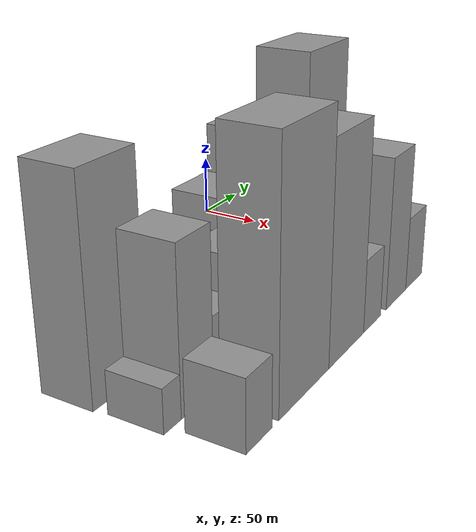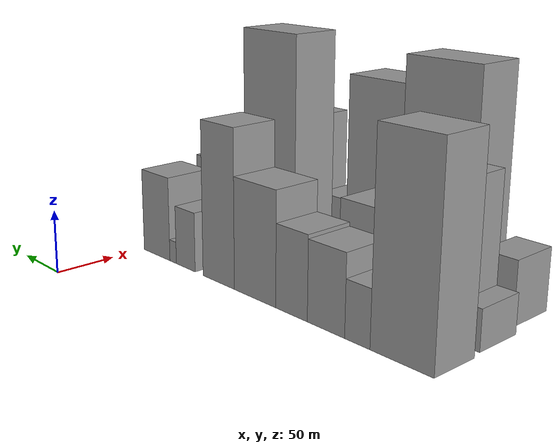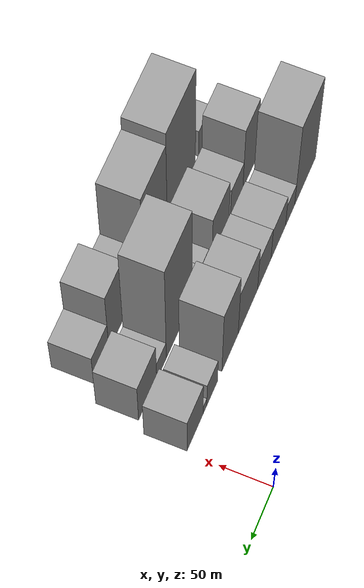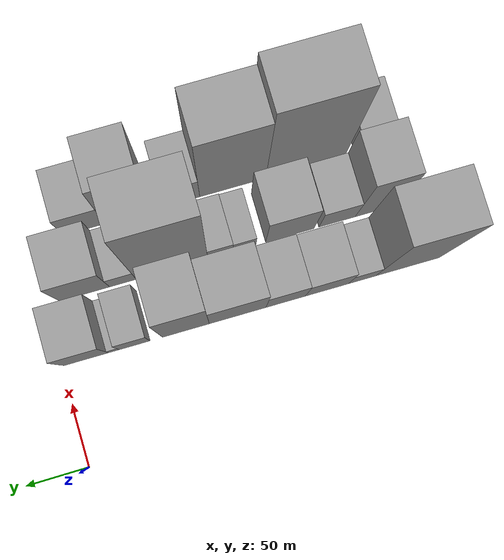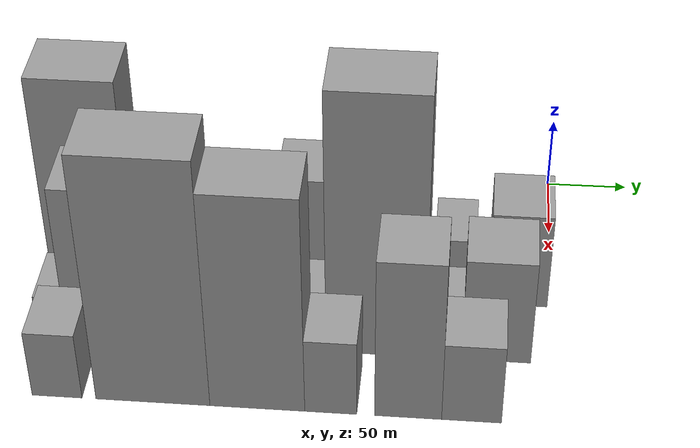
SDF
<sdf version="1.6">
 <world name="default">
  <model name="building_10">
   <static>1</static>
   <pose>100.0000 -278.1690 0 0.000000 0.000000 0.000000</pose>
   <link name="link">
    <pose>0 0 75.00 0 0 0</pose>
    <collision name="collision"><geometry><box><size>40.0000 51.6853 150.0000</size></box></geometry></collision>
    <visual name="visual">
     <cast_shadows>0</cast_shadows>
     <geometry><box><size>40.0000 51.6853 150.0000</size></box></geometry>
     <material>
      <script>
       <uri>model://grey_wall/materials/scripts</uri>
       <uri>model://grey_wall/materials/textures</uri>
       <name>vrc/grey_wall</name>
      </script>
     </material>
    </visual>
   </link>
  </model>
  <model name="building_11">
   <static>1</static>
   <pose>100.0000 -241.2043 0 0.000000 0.000000 0.000000</pose>
   <link name="link">
    <pose>0 0 21.00 0 0 0</pose>
    <collision name="collision"><geometry><box><size>40.0000 22.2441 42.0000</size></box></geometry></collision>
    <visual name="visual">
     <cast_shadows>0</cast_shadows>
     <geometry><box><size>40.0000 22.2441 42.0000</size></box></geometry>
     <material>
      <script>
       <uri>model://grey_wall/materials/scripts</uri>
       <uri>model://grey_wall/materials/textures</uri>
       <name>vrc/grey_wall</name>
      </script>
     </material>
    </visual>
   </link>
  </model>
  <model name="building_12">
   <static>1</static>
   <pose>100.0000 -212.5697 0 0.000000 0.000000 0.000000</pose>
   <link name="link">
    <pose>0 0 30.00 0 0 0</pose>
    <collision name="collision"><geometry><box><size>40.0000 35.0252 60.0000</size></box></geometry></collision>
    <visual name="visual">
     <cast_shadows>0</cast_shadows>
     <geometry><box><size>40.0000 35.0252 60.0000</size></box></geometry>
     <material>
      <script>
       <uri>model://grey_wall/materials/scripts</uri>
       <uri>model://grey_wall/materials/textures</uri>
       <name>vrc/grey_wall</name>
      </script>
     </material>
    </visual>
   </link>
  </model>
  <model name="building_13">
   <static>1</static>
   <pose>100.0000 -179.1213 0 0.000000 0.000000 0.000000</pose>
   <link name="link">
    <pose>0 0 31.50 0 0 0</pose>
    <collision name="collision"><geometry><box><size>40.0000 31.8716 63.0000</size></box></geometry></collision>
    <visual name="visual">
     <cast_shadows>0</cast_shadows>
     <geometry><box><size>40.0000 31.8716 63.0000</size></box></geometry>
     <material>
      <script>
       <uri>model://grey_wall/materials/scripts</uri>
       <uri>model://grey_wall/materials/textures</uri>
       <name>vrc/grey_wall</name>
      </script>
     </material>
    </visual>
   </link>
  </model>
  <model name="building_14">
   <static>1</static>
   <pose>100.0000 -140.4751 0 0.000000 0.000000 0.000000</pose>
   <link name="link">
    <pose>0 0 43.50 0 0 0</pose>
    <collision name="collision"><geometry><box><size>40.0000 45.4209 87.0000</size></box></geometry></collision>
    <visual name="visual">
     <cast_shadows>0</cast_shadows>
     <geometry><box><size>40.0000 45.4209 87.0000</size></box></geometry>
     <material>
      <script>
       <uri>model://grey_wall/materials/scripts</uri>
       <uri>model://grey_wall/materials/textures</uri>
       <name>vrc/grey_wall</name>
      </script>
     </material>
    </visual>
   </link>
  </model>
  <model name="building_15">
   <static>1</static>
   <pose>100.0000 -99.0353 0 0.000000 0.000000 0.000000</pose>
   <link name="link">
    <pose>0 0 61.50 0 0 0</pose>
    <collision name="collision"><geometry><box><size>40.0000 37.4587 123.0000</size></box></geometry></collision>
    <visual name="visual">
     <cast_shadows>0</cast_shadows>
     <geometry><box><size>40.0000 37.4587 123.0000</size></box></geometry>
     <material>
      <script>
       <uri>model://grey_wall/materials/scripts</uri>
       <uri>model://grey_wall/materials/textures</uri>
       <name>vrc/grey_wall</name>
      </script>
     </material>
    </visual>
   </link>
  </model>
  <model name="building_16">
   <static>1</static>
   <pose>100.0000 -58.1016 0 0.000000 0.000000 0.000000</pose>
   <link name="link">
    <pose>0 0 24.00 0 0 0</pose>
    <collision name="collision"><geometry><box><size>40.0000 24.4087 48.0000</size></box></geometry></collision>
    <visual name="visual">
     <cast_shadows>0</cast_shadows>
     <geometry><box><size>40.0000 24.4087 48.0000</size></box></geometry>
     <material>
      <script>
       <uri>model://grey_wall/materials/scripts</uri>
       <uri>model://grey_wall/materials/textures</uri>
       <name>vrc/grey_wall</name>
      </script>
     </material>
    </visual>
   </link>
  </model>
  <model name="building_17">
   <static>1</static>
   <pose>100.0000 -41.6353 0 0.000000 0.000000 0.000000</pose>
   <link name="link">
    <pose>0 0 9.00 0 0 0</pose>
    <collision name="collision"><geometry><box><size>40.0000 8.5240 18.0000</size></box></geometry></collision>
    <visual name="visual">
     <cast_shadows>0</cast_shadows>
     <geometry><box><size>40.0000 8.5240 18.0000</size></box></geometry>
     <material>
      <script>
       <uri>model://grey_wall/materials/scripts</uri>
       <uri>model://grey_wall/materials/textures</uri>
       <name>vrc/grey_wall</name>
      </script>
     </material>
    </visual>
   </link>
  </model>
  <model name="building_18">
   <static>1</static>
   <pose>100.0000 -19.5050 0 0.000000 0.000000 0.000000</pose>
   <link name="link">
    <pose>0 0 34.50 0 0 0</pose>
    <collision name="collision"><geometry><box><size>40.0000 35.7368 69.0000</size></box></geometry></collision>
    <visual name="visual">
     <cast_shadows>0</cast_shadows>
     <geometry><box><size>40.0000 35.7368 69.0000</size></box></geometry>
     <material>
      <script>
       <uri>model://grey_wall/materials/scripts</uri>
       <uri>model://grey_wall/materials/textures</uri>
       <name>vrc/grey_wall</name>
      </script>
     </material>
    </visual>
   </link>
  </model>
  <model name="building_42">
   <static>1</static>
   <pose>149.0000 -292.9622 0 0.000000 0.000000 0.000000</pose>
   <link name="link">
    <pose>0 0 15.00 0 0 0</pose>
    <collision name="collision"><geometry><box><size>40.0000 17.2029 30.0000</size></box></geometry></collision>
    <visual name="visual">
     <cast_shadows>0</cast_shadows>
     <geometry><box><size>40.0000 17.2029 30.0000</size></box></geometry>
     <material>
      <script>
       <uri>model://grey_wall/materials/scripts</uri>
       <uri>model://grey_wall/materials/textures</uri>
       <name>vrc/grey_wall</name>
      </script>
     </material>
    </visual>
   </link>
  </model>
  <model name="building_43">
   <static>1</static>
   <pose>149.0000 -267.3180 0 0.000000 0.000000 0.000000</pose>
   <link name="link">
    <pose>0 0 55.50 0 0 0</pose>
    <collision name="collision"><geometry><box><size>40.0000 34.0854 111.0000</size></box></geometry></collision>
    <visual name="visual">
     <cast_shadows>0</cast_shadows>
     <geometry><box><size>40.0000 34.0854 111.0000</size></box></geometry>
     <material>
      <script>
       <uri>model://grey_wall/materials/scripts</uri>
       <uri>model://grey_wall/materials/textures</uri>
       <name>vrc/grey_wall</name>
      </script>
     </material>
    </visual>
   </link>
  </model>
  <model name="building_44">
   <static>1</static>
   <pose>149.0000 -235.5309 0 0.000000 0.000000 0.000000</pose>
   <link name="link">
    <pose>0 0 25.50 0 0 0</pose>
    <collision name="collision"><geometry><box><size>40.0000 29.4887 51.0000</size></box></geometry></collision>
    <visual name="visual">
     <cast_shadows>0</cast_shadows>
     <geometry><box><size>40.0000 29.4887 51.0000</size></box></geometry>
     <material>
      <script>
       <uri>model://grey_wall/materials/scripts</uri>
       <uri>model://grey_wall/materials/textures</uri>
       <name>vrc/grey_wall</name>
      </script>
     </material>
    </visual>
   </link>
  </model>
  <model name="building_45">
   <static>1</static>
   <pose>149.0000 -197.1301 0 0.000000 0.000000 0.000000</pose>
   <link name="link">
    <pose>0 0 37.50 0 0 0</pose>
    <collision name="collision"><geometry><box><size>40.0000 39.3130 75.0000</size></box></geometry></collision>
    <visual name="visual">
     <cast_shadows>0</cast_shadows>
     <geometry><box><size>40.0000 39.3130 75.0000</size></box></geometry>
     <material>
      <script>
       <uri>model://grey_wall/materials/scripts</uri>
       <uri>model://grey_wall/materials/textures</uri>
       <name>vrc/grey_wall</name>
      </script>
     </material>
    </visual>
   </link>
  </model>
  <model name="building_46">
   <static>1</static>
   <pose>149.0000 -160.2968 0 0.000000 0.000000 0.000000</pose>
   <link name="link">
    <pose>0 0 16.50 0 0 0</pose>
    <collision name="collision"><geometry><box><size>40.0000 18.3535 33.0000</size></box></geometry></collision>
    <visual name="visual">
     <cast_shadows>0</cast_shadows>
     <geometry><box><size>40.0000 18.3535 33.0000</size></box></geometry>
     <material>
      <script>
       <uri>model://grey_wall/materials/scripts</uri>
       <uri>model://grey_wall/materials/textures</uri>
       <name>vrc/grey_wall</name>
      </script>
     </material>
    </visual>
   </link>
  </model>
  <model name="building_47">
   <static>1</static>
   <pose>149.0000 -140.8516 0 0.000000 0.000000 0.000000</pose>
   <link name="link">
    <pose>0 0 18.00 0 0 0</pose>
    <collision name="collision"><geometry><box><size>40.0000 20.5370 36.0000</size></box></geometry></collision>
    <visual name="visual">
     <cast_shadows>0</cast_shadows>
     <geometry><box><size>40.0000 20.5370 36.0000</size></box></geometry>
     <material>
      <script>
       <uri>model://grey_wall/materials/scripts</uri>
       <uri>model://grey_wall/materials/textures</uri>
       <name>vrc/grey_wall</name>
      </script>
     </material>
    </visual>
   </link>
  </model>
  <model name="building_48">
   <static>1</static>
   <pose>149.0000 -101.6946 0 0.000000 0.000000 0.000000</pose>
   <link name="link">
    <pose>0 0 93.00 0 0 0</pose>
    <collision name="collision"><geometry><box><size>40.0000 57.7770 186.0000</size></box></geometry></collision>
    <visual name="visual">
     <cast_shadows>0</cast_shadows>
     <geometry><box><size>40.0000 57.7770 186.0000</size></box></geometry>
     <material>
      <script>
       <uri>model://grey_wall/materials/scripts</uri>
       <uri>model://grey_wall/materials/textures</uri>
       <name>vrc/grey_wall</name>
      </script>
     </material>
    </visual>
   </link>
  </model>
  <model name="building_49">
   <static>1</static>
   <pose>149.0000 -62.0989 0 0.000000 0.000000 0.000000</pose>
   <link name="link">
    <pose>0 0 18.00 0 0 0</pose>
    <collision name="collision"><geometry><box><size>40.0000 21.4145 36.0000</size></box></geometry></collision>
    <visual name="visual">
     <cast_shadows>0</cast_shadows>
     <geometry><box><size>40.0000 21.4145 36.0000</size></box></geometry>
     <material>
      <script>
       <uri>model://grey_wall/materials/scripts</uri>
       <uri>model://grey_wall/materials/textures</uri>
       <name>vrc/grey_wall</name>
      </script>
     </material>
    </visual>
   </link>
  </model>
  <model name="building_50">
   <static>1</static>
   <pose>149.0000 -31.4144 0 0.000000 0.000000 0.000000</pose>
   <link name="link">
    <pose>0 0 37.50 0 0 0</pose>
    <collision name="collision"><geometry><box><size>40.0000 39.9545 75.0000</size></box></geometry></collision>
    <visual name="visual">
     <cast_shadows>0</cast_shadows>
     <geometry><box><size>40.0000 39.9545 75.0000</size></box></geometry>
     <material>
      <script>
       <uri>model://grey_wall/materials/scripts</uri>
       <uri>model://grey_wall/materials/textures</uri>
       <name>vrc/grey_wall</name>
      </script>
     </material>
    </visual>
   </link>
  </model>
  <model name="building_74">
   <static>1</static>
   <pose>198.0000 -279.3317 0 0.000000 0.000000 0.000000</pose>
   <link name="link">
    <pose>0 0 24.00 0 0 0</pose>
    <collision name="collision"><geometry><box><size>40.0000 28.6721 48.0000</size></box></geometry></collision>
    <visual name="visual">
     <cast_shadows>0</cast_shadows>
     <geometry><box><size>40.0000 28.6721 48.0000</size></box></geometry>
     <material>
      <script>
       <uri>model://grey_wall/materials/scripts</uri>
       <uri>model://grey_wall/materials/textures</uri>
       <name>vrc/grey_wall</name>
      </script>
     </material>
    </visual>
   </link>
  </model>
  <model name="building_75">
   <static>1</static>
   <pose>198.0000 -224.3895 0 0.000000 0.000000 0.000000</pose>
   <link name="link">
    <pose>0 0 87.00 0 0 0</pose>
    <collision name="collision"><geometry><box><size>40.0000 65.2123 174.0000</size></box></geometry></collision>
    <visual name="visual">
     <cast_shadows>0</cast_shadows>
     <geometry><box><size>40.0000 65.2123 174.0000</size></box></geometry>
     <material>
      <script>
       <uri>model://grey_wall/materials/scripts</uri>
       <uri>model://grey_wall/materials/textures</uri>
       <name>vrc/grey_wall</name>
      </script>
     </material>
    </visual>
   </link>
  </model>
  <model name="building_76">
   <static>1</static>
   <pose>198.0000 -164.8681 0 0.000000 0.000000 0.000000</pose>
   <link name="link">
    <pose>0 0 76.50 0 0 0</pose>
    <collision name="collision"><geometry><box><size>40.0000 53.8304 153.0000</size></box></geometry></collision>
    <visual name="visual">
     <cast_shadows>0</cast_shadows>
     <geometry><box><size>40.0000 53.8304 153.0000</size></box></geometry>
     <material>
      <script>
       <uri>model://grey_wall/materials/scripts</uri>
       <uri>model://grey_wall/materials/textures</uri>
       <name>vrc/grey_wall</name>
      </script>
     </material>
    </visual>
   </link>
  </model>
  <model name="building_77">
   <static>1</static>
   <pose>198.0000 -123.2888 0 0.000000 0.000000 0.000000</pose>
   <link name="link">
    <pose>0 0 27.00 0 0 0</pose>
    <collision name="collision"><geometry><box><size>40.0000 29.3283 54.0000</size></box></geometry></collision>
    <visual name="visual">
     <cast_shadows>0</cast_shadows>
     <geometry><box><size>40.0000 29.3283 54.0000</size></box></geometry>
     <material>
      <script>
       <uri>model://grey_wall/materials/scripts</uri>
       <uri>model://grey_wall/materials/textures</uri>
       <name>vrc/grey_wall</name>
      </script>
     </material>
    </visual>
   </link>
  </model>
  <model name="building_78">
   <static>1</static>
   <pose>198.0000 -79.8004 0 0.000000 0.000000 0.000000</pose>
   <link name="link">
    <pose>0 0 57.00 0 0 0</pose>
    <collision name="collision"><geometry><box><size>40.0000 37.6486 114.0000</size></box></geometry></collision>
    <visual name="visual">
     <cast_shadows>0</cast_shadows>
     <geometry><box><size>40.0000 37.6486 114.0000</size></box></geometry>
     <material>
      <script>
       <uri>model://grey_wall/materials/scripts</uri>
       <uri>model://grey_wall/materials/textures</uri>
       <name>vrc/grey_wall</name>
      </script>
     </material>
    </visual>
   </link>
  </model>
  <model name="building_79">
   <static>1</static>
   <pose>198.0000 -44.2653 0 0.000000 0.000000 0.000000</pose>
   <link name="link">
    <pose>0 0 28.50 0 0 0</pose>
    <collision name="collision"><geometry><box><size>40.0000 33.4216 57.0000</size></box></geometry></collision>
    <visual name="visual">
     <cast_shadows>0</cast_shadows>
     <geometry><box><size>40.0000 33.4216 57.0000</size></box></geometry>
     <material>
      <script>
       <uri>model://grey_wall/materials/scripts</uri>
       <uri>model://grey_wall/materials/textures</uri>
       <name>vrc/grey_wall</name>
      </script>
     </material>
    </visual>
   </link>
  </model>
 </world>
</sdf>
